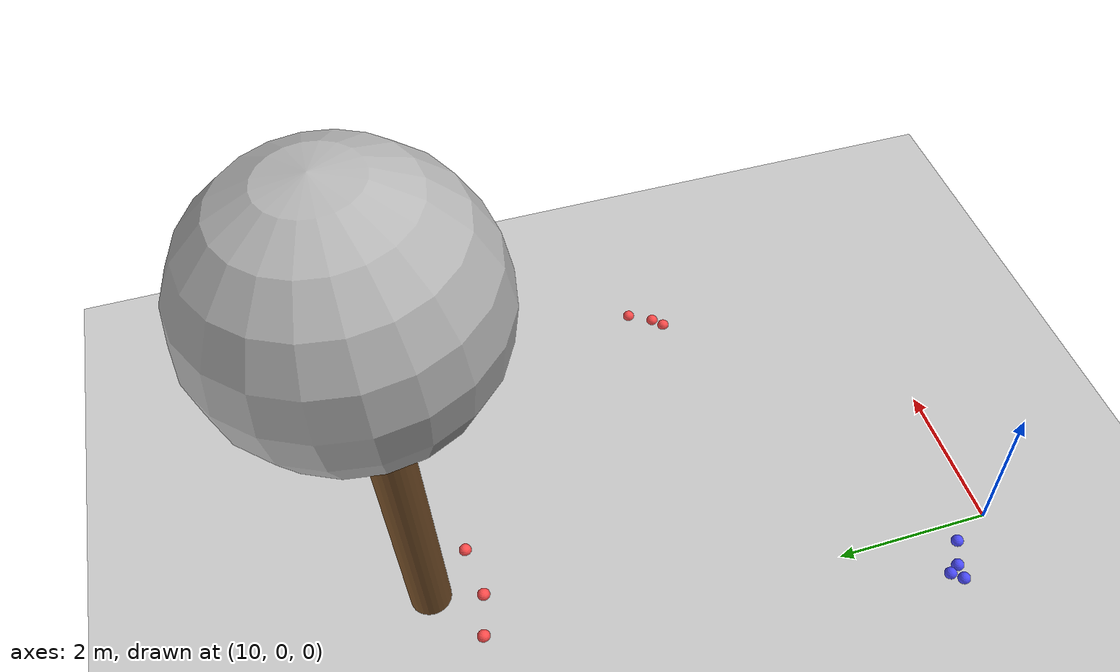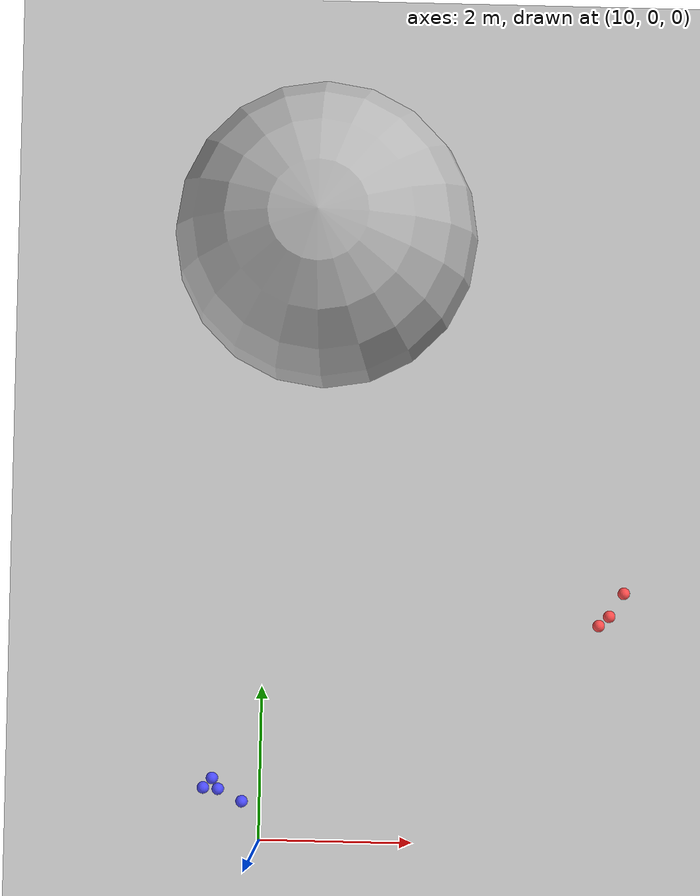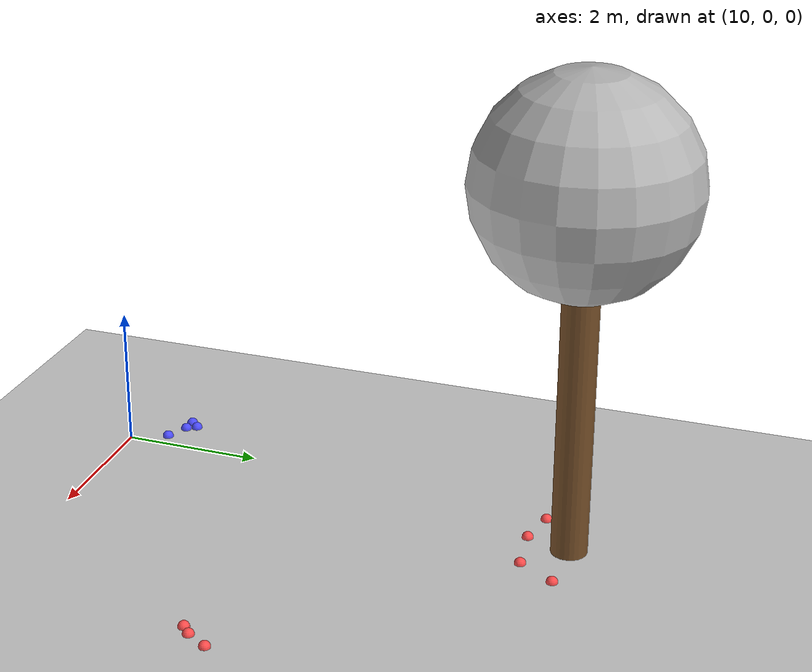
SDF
<sdf version="1.7">
 <world name="default">
  <model name="ground_plane">
   <static>1</static>
   <link name="link">
    <collision name="collision">
     <geometry><plane><normal>0 0 1</normal><size>100 100</size></plane></geometry>
     <surface>
      <contact><collide_bitmask>65535</collide_bitmask></contact>
      <friction><ode><mu>100</mu><mu2>50</mu2></ode></friction>
     </surface>
    </collision>
    <visual name="visual">
     <cast_shadows>0</cast_shadows>
     <geometry><plane><normal>0 0 1</normal><size>100 100</size></plane></geometry>
     <material>
      <script><uri>file://media/materials/scripts/gazebo.material</uri><name>Gazebo/Grey</name></script>
     </material>
    </visual>
   </link>
  </model>
  <model name="tree_simple_77">
   <static>1</static>
   <link name="link">
    <pose>0 0 0.1 0 -0 0</pose>
    <inertial>
     <mass>666</mass>
     <inertia>
      <ixx>0.0861167</ixx>
      <ixy>0</ixy>
      <ixz>0</ixz>
      <iyy>0.0861167</iyy>
      <iyz>0</iyz>
      <izz>0.0861167</izz>
     </inertia>
    </inertial>
    <collision name="collision_trunk">
     <pose>0 0 2 0 -0 0</pose>
     <geometry><cylinder><radius>0.25</radius><length>4</length></cylinder></geometry>
     <surface>
      <contact>
       <poissons_ratio>0.347</poissons_ratio>
       <elastic_modulus>8.8e+09</elastic_modulus>
       <ode><kp>100000</kp><kd>100</kd><max_vel>100</max_vel><min_depth>0.001</min_depth></ode>
      </contact>
      <friction>
       <torsional>
        <coefficient>1</coefficient>
        <use_patch_radius>0</use_patch_radius>
        <surface_radius>0.01</surface_radius>
       </torsional>
      </friction>
     </surface>
    </collision>
    <collision name="collision_treetop">
     <pose>0 0 5.2 0 -0 0</pose>
     <geometry><sphere><radius>1.5</radius></sphere></geometry>
     <surface>
      <contact>
       <poissons_ratio>0.347</poissons_ratio>
       <elastic_modulus>8.8e+09</elastic_modulus>
       <ode><kp>100000</kp><kd>100</kd><max_vel>100</max_vel><min_depth>0.001</min_depth></ode>
      </contact>
      <friction>
       <torsional>
        <coefficient>1</coefficient>
        <use_patch_radius>0</use_patch_radius>
        <surface_radius>0.01</surface_radius>
       </torsional>
      </friction>
     </surface>
    </collision>
    <visual name="trunk">
     <pose>0 0 2 0 -0 0</pose>
     <geometry><cylinder><radius>0.25</radius><length>4</length></cylinder></geometry>
     <material>
      <script>
       <uri>model://tree_simple/scripts</uri>
       <uri>model://tree_simple/materials/textures</uri>
       <name>TreeSimple/Trunk</name>
      </script>
     </material>
    </visual>
    <visual name="treetop">
     <pose>0 0 5.2 0 -0 0</pose>
     <geometry><sphere><radius>1.5</radius></sphere></geometry>
     <material>
      <script>
       <uri>model://tree_simple/scripts</uri>
       <uri>model://tree_simple/materials/textures</uri>
       <name>TreeSimple/Treetop</name>
      </script>
     </material>
    </visual>
   </link>
   <pose>11 7 -0.1 0 -0 0</pose>
  </model>
  <model name="seed_red_308">
   <link name="link">
    <inertial>
     <mass>1</mass>
     <inertia><ixx>0.1</ixx><ixy>0</ixy><ixz>0</ixz><iyy>0.1</iyy><iyz>0</iyz><izz>0.1</izz></inertia>
    </inertial>
    <visual name="visual">
     <geometry><sphere><radius>0.08</radius></sphere></geometry>
     <material>
      <script><name>Gazebo/Grey</name><uri>file://media/materials/scripts/gazebo.material</uri></script>
      <shader type="pixel"><normal_map>__default__</normal_map></shader>
      <ambient>1 0.3 0.3 1</ambient>
      <diffuse>0.7 0.7 0.7 1</diffuse>
      <specular>0.01 0.01 0.01 1</specular>
      <emissive>0 0 0 1</emissive>
     </material>
    </visual>
    <collision name="collision">
     <geometry><sphere><radius>0.0005</radius></sphere></geometry>
     <surface>
      <friction>
       <ode><mu>1</mu><mu2>1</mu2><fdir1>0 0 0</fdir1><slip1>0</slip1><slip2>0</slip2></ode>
       <torsional>
        <coefficient>1</coefficient>
        <patch_radius>0</patch_radius>
        <surface_radius>0</surface_radius>
        <use_patch_radius>1</use_patch_radius>
        <ode><slip>0</slip></ode>
       </torsional>
      </friction>
      <bounce><restitution_coefficient>0</restitution_coefficient><threshold>1e+06</threshold></bounce>
      <contact>
       <collide_without_contact>0</collide_without_contact>
       <collide_without_contact_bitmask>1</collide_without_contact_bitmask>
       <collide_bitmask>1</collide_bitmask>
       <ode>
        <soft_cfm>0</soft_cfm>
        <soft_erp>0.2</soft_erp>
        <kp>1e+13</kp>
        <kd>1</kd>
        <max_vel>0.01</max_vel>
        <min_depth>0</min_depth>
       </ode>
       <bullet>
        <split_impulse>1</split_impulse>
        <split_impulse_penetration_threshold>-0.01</split_impulse_penetration_threshold>
        <soft_cfm>0</soft_cfm>
        <soft_erp>0.2</soft_erp>
        <kp>1e+13</kp>
        <kd>1</kd>
       </bullet>
      </contact>
     </surface>
    </collision>
   </link>
   <static>0</static>
   <pose>10.2884 6.50416 0.0005 0 -0 0</pose>
  </model>
  <model name="seed_red_313">
   <link name="link">
    <inertial>
     <mass>1</mass>
     <inertia><ixx>0.1</ixx><ixy>0</ixy><ixz>0</ixz><iyy>0.1</iyy><iyz>0</iyz><izz>0.1</izz></inertia>
    </inertial>
    <visual name="visual">
     <geometry><sphere><radius>0.08</radius></sphere></geometry>
     <material>
      <script><name>Gazebo/Grey</name><uri>file://media/materials/scripts/gazebo.material</uri></script>
      <shader type="pixel"><normal_map>__default__</normal_map></shader>
      <ambient>1 0.3 0.3 1</ambient>
      <diffuse>0.7 0.7 0.7 1</diffuse>
      <specular>0.01 0.01 0.01 1</specular>
      <emissive>0 0 0 1</emissive>
     </material>
    </visual>
    <collision name="collision">
     <geometry><sphere><radius>0.0005</radius></sphere></geometry>
     <surface>
      <friction>
       <ode><mu>1</mu><mu2>1</mu2><fdir1>0 0 0</fdir1><slip1>0</slip1><slip2>0</slip2></ode>
       <torsional>
        <coefficient>1</coefficient>
        <patch_radius>0</patch_radius>
        <surface_radius>0</surface_radius>
        <use_patch_radius>1</use_patch_radius>
        <ode><slip>0</slip></ode>
       </torsional>
      </friction>
      <bounce><restitution_coefficient>0</restitution_coefficient><threshold>1e+06</threshold></bounce>
      <contact>
       <collide_without_contact>0</collide_without_contact>
       <collide_without_contact_bitmask>1</collide_without_contact_bitmask>
       <collide_bitmask>1</collide_bitmask>
       <ode>
        <soft_cfm>0</soft_cfm>
        <soft_erp>0.2</soft_erp>
        <kp>1e+13</kp>
        <kd>1</kd>
        <max_vel>0.01</max_vel>
        <min_depth>0</min_depth>
       </ode>
       <bullet>
        <split_impulse>1</split_impulse>
        <split_impulse_penetration_threshold>-0.01</split_impulse_penetration_threshold>
        <soft_cfm>0</soft_cfm>
        <soft_erp>0.2</soft_erp>
        <kp>1e+13</kp>
        <kd>1</kd>
       </bullet>
      </contact>
     </surface>
    </collision>
   </link>
   <static>0</static>
   <pose>10.8317 6.38374 0.0005 0 -0 0</pose>
  </model>
  <model name="seed_red_314">
   <link name="link">
    <inertial>
     <mass>1</mass>
     <inertia><ixx>0.1</ixx><ixy>0</ixy><ixz>0</ixz><iyy>0.1</iyy><iyz>0</iyz><izz>0.1</izz></inertia>
    </inertial>
    <visual name="visual">
     <geometry><sphere><radius>0.08</radius></sphere></geometry>
     <material>
      <script><name>Gazebo/Grey</name><uri>file://media/materials/scripts/gazebo.material</uri></script>
      <shader type="pixel"><normal_map>__default__</normal_map></shader>
      <ambient>1 0.3 0.3 1</ambient>
      <diffuse>0.7 0.7 0.7 1</diffuse>
      <specular>0.01 0.01 0.01 1</specular>
      <emissive>0 0 0 1</emissive>
     </material>
    </visual>
    <collision name="collision">
     <geometry><sphere><radius>0.0005</radius></sphere></geometry>
     <surface>
      <friction>
       <ode><mu>1</mu><mu2>1</mu2><fdir1>0 0 0</fdir1><slip1>0</slip1><slip2>0</slip2></ode>
       <torsional>
        <coefficient>1</coefficient>
        <patch_radius>0</patch_radius>
        <surface_radius>0</surface_radius>
        <use_patch_radius>1</use_patch_radius>
        <ode><slip>0</slip></ode>
       </torsional>
      </friction>
      <bounce><restitution_coefficient>0</restitution_coefficient><threshold>1e+06</threshold></bounce>
      <contact>
       <collide_without_contact>0</collide_without_contact>
       <collide_without_contact_bitmask>1</collide_without_contact_bitmask>
       <collide_bitmask>1</collide_bitmask>
       <ode>
        <soft_cfm>0</soft_cfm>
        <soft_erp>0.2</soft_erp>
        <kp>1e+13</kp>
        <kd>1</kd>
        <max_vel>0.01</max_vel>
        <min_depth>0</min_depth>
       </ode>
       <bullet>
        <split_impulse>1</split_impulse>
        <split_impulse_penetration_threshold>-0.01</split_impulse_penetration_threshold>
        <soft_cfm>0</soft_cfm>
        <soft_erp>0.2</soft_erp>
        <kp>1e+13</kp>
        <kd>1</kd>
       </bullet>
      </contact>
     </surface>
    </collision>
   </link>
   <static>0</static>
   <pose>11.5167 6.46631 0.0005 0 -0 0</pose>
  </model>
  <model name="seed_red_316">
   <link name="link">
    <inertial>
     <mass>1</mass>
     <inertia><ixx>0.1</ixx><ixy>0</ixy><ixz>0</ixz><iyy>0.1</iyy><iyz>0</iyz><izz>0.1</izz></inertia>
    </inertial>
    <visual name="visual">
     <geometry><sphere><radius>0.08</radius></sphere></geometry>
     <material>
      <script><name>Gazebo/Grey</name><uri>file://media/materials/scripts/gazebo.material</uri></script>
      <shader type="pixel"><normal_map>__default__</normal_map></shader>
      <ambient>1 0.3 0.3 1</ambient>
      <diffuse>0.7 0.7 0.7 1</diffuse>
      <specular>0.01 0.01 0.01 1</specular>
      <emissive>0 0 0 1</emissive>
     </material>
    </visual>
    <collision name="collision">
     <geometry><sphere><radius>0.0005</radius></sphere></geometry>
     <surface>
      <friction>
       <ode><mu>1</mu><mu2>1</mu2><fdir1>0 0 0</fdir1><slip1>0</slip1><slip2>0</slip2></ode>
       <torsional>
        <coefficient>1</coefficient>
        <patch_radius>0</patch_radius>
        <surface_radius>0</surface_radius>
        <use_patch_radius>1</use_patch_radius>
        <ode><slip>0</slip></ode>
       </torsional>
      </friction>
      <bounce><restitution_coefficient>0</restitution_coefficient><threshold>1e+06</threshold></bounce>
      <contact>
       <collide_without_contact>0</collide_without_contact>
       <collide_without_contact_bitmask>1</collide_without_contact_bitmask>
       <collide_bitmask>1</collide_bitmask>
       <ode>
        <soft_cfm>0</soft_cfm>
        <soft_erp>0.2</soft_erp>
        <kp>1e+13</kp>
        <kd>1</kd>
        <max_vel>0.01</max_vel>
        <min_depth>0</min_depth>
       </ode>
       <bullet>
        <split_impulse>1</split_impulse>
        <split_impulse_penetration_threshold>-0.01</split_impulse_penetration_threshold>
        <soft_cfm>0</soft_cfm>
        <soft_erp>0.2</soft_erp>
        <kp>1e+13</kp>
        <kd>1</kd>
       </bullet>
      </contact>
     </surface>
    </collision>
   </link>
   <static>0</static>
   <pose>11.8294 6.98326 0.0005 0 -0 0</pose>
  </model>
  <model name="seed_red_369">
   <link name="link">
    <inertial>
     <mass>1</mass>
     <inertia><ixx>0.1</ixx><ixy>0</ixy><ixz>0</ixz><iyy>0.1</iyy><iyz>0</iyz><izz>0.1</izz></inertia>
    </inertial>
    <visual name="visual">
     <geometry><sphere><radius>0.08</radius></sphere></geometry>
     <material>
      <script><name>Gazebo/Grey</name><uri>file://media/materials/scripts/gazebo.material</uri></script>
      <shader type="pixel"><normal_map>__default__</normal_map></shader>
      <ambient>1 0.3 0.3 1</ambient>
      <diffuse>0.7 0.7 0.7 1</diffuse>
      <specular>0.01 0.01 0.01 1</specular>
      <emissive>0 0 0 1</emissive>
     </material>
    </visual>
    <collision name="collision">
     <geometry><sphere><radius>0.0005</radius></sphere></geometry>
     <surface>
      <friction>
       <ode><mu>1</mu><mu2>1</mu2><fdir1>0 0 0</fdir1><slip1>0</slip1><slip2>0</slip2></ode>
       <torsional>
        <coefficient>1</coefficient>
        <patch_radius>0</patch_radius>
        <surface_radius>0</surface_radius>
        <use_patch_radius>1</use_patch_radius>
        <ode><slip>0</slip></ode>
       </torsional>
      </friction>
      <bounce><restitution_coefficient>0</restitution_coefficient><threshold>1e+06</threshold></bounce>
      <contact>
       <collide_without_contact>0</collide_without_contact>
       <collide_without_contact_bitmask>1</collide_without_contact_bitmask>
       <collide_bitmask>1</collide_bitmask>
       <ode>
        <soft_cfm>0</soft_cfm>
        <soft_erp>0.2</soft_erp>
        <kp>1e+13</kp>
        <kd>1</kd>
        <max_vel>0.01</max_vel>
        <min_depth>0</min_depth>
       </ode>
       <bullet>
        <split_impulse>1</split_impulse>
        <split_impulse_penetration_threshold>-0.01</split_impulse_penetration_threshold>
        <soft_cfm>0</soft_cfm>
        <soft_erp>0.2</soft_erp>
        <kp>1e+13</kp>
        <kd>1</kd>
       </bullet>
      </contact>
     </surface>
    </collision>
   </link>
   <static>0</static>
   <pose>14.5156 3.02152 0.0005 0 -0 0</pose>
  </model>
  <model name="seed_red_370">
   <link name="link">
    <inertial>
     <mass>1</mass>
     <inertia><ixx>0.1</ixx><ixy>0</ixy><ixz>0</ixz><iyy>0.1</iyy><iyz>0</iyz><izz>0.1</izz></inertia>
    </inertial>
    <visual name="visual">
     <geometry><sphere><radius>0.08</radius></sphere></geometry>
     <material>
      <script><name>Gazebo/Grey</name><uri>file://media/materials/scripts/gazebo.material</uri></script>
      <shader type="pixel"><normal_map>__default__</normal_map></shader>
      <ambient>1 0.3 0.3 1</ambient>
      <diffuse>0.7 0.7 0.7 1</diffuse>
      <specular>0.01 0.01 0.01 1</specular>
      <emissive>0 0 0 1</emissive>
     </material>
    </visual>
    <collision name="collision">
     <geometry><sphere><radius>0.0005</radius></sphere></geometry>
     <surface>
      <friction>
       <ode><mu>1</mu><mu2>1</mu2><fdir1>0 0 0</fdir1><slip1>0</slip1><slip2>0</slip2></ode>
       <torsional>
        <coefficient>1</coefficient>
        <patch_radius>0</patch_radius>
        <surface_radius>0</surface_radius>
        <use_patch_radius>1</use_patch_radius>
        <ode><slip>0</slip></ode>
       </torsional>
      </friction>
      <bounce><restitution_coefficient>0</restitution_coefficient><threshold>1e+06</threshold></bounce>
      <contact>
       <collide_without_contact>0</collide_without_contact>
       <collide_without_contact_bitmask>1</collide_without_contact_bitmask>
       <collide_bitmask>1</collide_bitmask>
       <ode>
        <soft_cfm>0</soft_cfm>
        <soft_erp>0.2</soft_erp>
        <kp>1e+13</kp>
        <kd>1</kd>
        <max_vel>0.01</max_vel>
        <min_depth>0</min_depth>
       </ode>
       <bullet>
        <split_impulse>1</split_impulse>
        <split_impulse_penetration_threshold>-0.01</split_impulse_penetration_threshold>
        <soft_cfm>0</soft_cfm>
        <soft_erp>0.2</soft_erp>
        <kp>1e+13</kp>
        <kd>1</kd>
       </bullet>
      </contact>
     </surface>
    </collision>
   </link>
   <static>0</static>
   <pose>14.7002 3.32565 0.0005 0 -0 0</pose>
  </model>
  <model name="seed_red_371">
   <link name="link">
    <inertial>
     <mass>1</mass>
     <inertia><ixx>0.1</ixx><ixy>0</ixy><ixz>0</ixz><iyy>0.1</iyy><iyz>0</iyz><izz>0.1</izz></inertia>
    </inertial>
    <visual name="visual">
     <geometry><sphere><radius>0.08</radius></sphere></geometry>
     <material>
      <script><name>Gazebo/Grey</name><uri>file://media/materials/scripts/gazebo.material</uri></script>
      <shader type="pixel"><normal_map>__default__</normal_map></shader>
      <ambient>1 0.3 0.3 1</ambient>
      <diffuse>0.7 0.7 0.7 1</diffuse>
      <specular>0.01 0.01 0.01 1</specular>
      <emissive>0 0 0 1</emissive>
     </material>
    </visual>
    <collision name="collision">
     <geometry><sphere><radius>0.0005</radius></sphere></geometry>
     <surface>
      <friction>
       <ode><mu>1</mu><mu2>1</mu2><fdir1>0 0 0</fdir1><slip1>0</slip1><slip2>0</slip2></ode>
       <torsional>
        <coefficient>1</coefficient>
        <patch_radius>0</patch_radius>
        <surface_radius>0</surface_radius>
        <use_patch_radius>1</use_patch_radius>
        <ode><slip>0</slip></ode>
       </torsional>
      </friction>
      <bounce><restitution_coefficient>0</restitution_coefficient><threshold>1e+06</threshold></bounce>
      <contact>
       <collide_without_contact>0</collide_without_contact>
       <collide_without_contact_bitmask>1</collide_without_contact_bitmask>
       <collide_bitmask>1</collide_bitmask>
       <ode>
        <soft_cfm>0</soft_cfm>
        <soft_erp>0.2</soft_erp>
        <kp>1e+13</kp>
        <kd>1</kd>
        <max_vel>0.01</max_vel>
        <min_depth>0</min_depth>
       </ode>
       <bullet>
        <split_impulse>1</split_impulse>
        <split_impulse_penetration_threshold>-0.01</split_impulse_penetration_threshold>
        <soft_cfm>0</soft_cfm>
        <soft_erp>0.2</soft_erp>
        <kp>1e+13</kp>
        <kd>1</kd>
       </bullet>
      </contact>
     </surface>
    </collision>
   </link>
   <static>0</static>
   <pose>14.3807 2.89718 0.0005 0 -0 0</pose>
  </model>
  <model name="seed_blue_209">
   <link name="link">
    <inertial>
     <mass>1</mass>
     <inertia><ixx>0.1</ixx><ixy>0</ixy><ixz>0</ixz><iyy>0.1</iyy><iyz>0</iyz><izz>0.1</izz></inertia>
    </inertial>
    <visual name="visual">
     <geometry><sphere><radius>0.08</radius></sphere></geometry>
     <material>
      <script><name>Gazebo/Grey</name><uri>file://media/materials/scripts/gazebo.material</uri></script>
      <shader type="pixel"><normal_map>__default__</normal_map></shader>
      <ambient>0.3 0.3 1 1</ambient>
      <diffuse>0.7 0.7 0.7 1</diffuse>
      <specular>0.01 0.01 0.01 1</specular>
      <emissive>0 0 0 1</emissive>
     </material>
    </visual>
    <collision name="collision">
     <geometry><sphere><radius>0.0005</radius></sphere></geometry>
     <surface>
      <friction>
       <ode><mu>1</mu><mu2>1</mu2><fdir1>0 0 0</fdir1><slip1>0</slip1><slip2>0</slip2></ode>
       <torsional>
        <coefficient>1</coefficient>
        <patch_radius>0</patch_radius>
        <surface_radius>0</surface_radius>
        <use_patch_radius>1</use_patch_radius>
        <ode><slip>0</slip></ode>
       </torsional>
      </friction>
      <bounce><restitution_coefficient>0</restitution_coefficient><threshold>1e+06</threshold></bounce>
      <contact>
       <collide_without_contact>0</collide_without_contact>
       <collide_without_contact_bitmask>1</collide_without_contact_bitmask>
       <collide_bitmask>1</collide_bitmask>
       <ode>
        <soft_cfm>0</soft_cfm>
        <soft_erp>0.2</soft_erp>
        <kp>1e+13</kp>
        <kd>1</kd>
        <max_vel>0.01</max_vel>
        <min_depth>0</min_depth>
       </ode>
       <bullet>
        <split_impulse>1</split_impulse>
        <split_impulse_penetration_threshold>-0.01</split_impulse_penetration_threshold>
        <soft_cfm>0</soft_cfm>
        <soft_erp>0.2</soft_erp>
        <kp>1e+13</kp>
        <kd>1</kd>
       </bullet>
      </contact>
     </surface>
    </collision>
   </link>
   <static>0</static>
   <pose>9.37113 0.792072 0.0005 0 -0 0</pose>
  </model>
  <model name="seed_blue_210">
   <link name="link">
    <inertial>
     <mass>1</mass>
     <inertia><ixx>0.1</ixx><ixy>0</ixy><ixz>0</ixz><iyy>0.1</iyy><iyz>0</iyz><izz>0.1</izz></inertia>
    </inertial>
    <visual name="visual">
     <geometry><sphere><radius>0.08</radius></sphere></geometry>
     <material>
      <script><name>Gazebo/Grey</name><uri>file://media/materials/scripts/gazebo.material</uri></script>
      <shader type="pixel"><normal_map>__default__</normal_map></shader>
      <ambient>0.3 0.3 1 1</ambient>
      <diffuse>0.7 0.7 0.7 1</diffuse>
      <specular>0.01 0.01 0.01 1</specular>
      <emissive>0 0 0 1</emissive>
     </material>
    </visual>
    <collision name="collision">
     <geometry><sphere><radius>0.0005</radius></sphere></geometry>
     <surface>
      <friction>
       <ode><mu>1</mu><mu2>1</mu2><fdir1>0 0 0</fdir1><slip1>0</slip1><slip2>0</slip2></ode>
       <torsional>
        <coefficient>1</coefficient>
        <patch_radius>0</patch_radius>
        <surface_radius>0</surface_radius>
        <use_patch_radius>1</use_patch_radius>
        <ode><slip>0</slip></ode>
       </torsional>
      </friction>
      <bounce><restitution_coefficient>0</restitution_coefficient><threshold>1e+06</threshold></bounce>
      <contact>
       <collide_without_contact>0</collide_without_contact>
       <collide_without_contact_bitmask>1</collide_without_contact_bitmask>
       <collide_bitmask>1</collide_bitmask>
       <ode>
        <soft_cfm>0</soft_cfm>
        <soft_erp>0.2</soft_erp>
        <kp>1e+13</kp>
        <kd>1</kd>
        <max_vel>0.01</max_vel>
        <min_depth>0</min_depth>
       </ode>
       <bullet>
        <split_impulse>1</split_impulse>
        <split_impulse_penetration_threshold>-0.01</split_impulse_penetration_threshold>
        <soft_cfm>0</soft_cfm>
        <soft_erp>0.2</soft_erp>
        <kp>1e+13</kp>
        <kd>1</kd>
       </bullet>
      </contact>
     </surface>
    </collision>
   </link>
   <static>0</static>
   <pose>9.76548 0.496431 0.0005 0 -0 0</pose>
  </model>
  <model name="seed_blue_211">
   <link name="link">
    <inertial>
     <mass>1</mass>
     <inertia><ixx>0.1</ixx><ixy>0</ixy><ixz>0</ixz><iyy>0.1</iyy><iyz>0</iyz><izz>0.1</izz></inertia>
    </inertial>
    <visual name="visual">
     <geometry><sphere><radius>0.08</radius></sphere></geometry>
     <material>
      <script><name>Gazebo/Grey</name><uri>file://media/materials/scripts/gazebo.material</uri></script>
      <shader type="pixel"><normal_map>__default__</normal_map></shader>
      <ambient>0.3 0.3 1 1</ambient>
      <diffuse>0.7 0.7 0.7 1</diffuse>
      <specular>0.01 0.01 0.01 1</specular>
      <emissive>0 0 0 1</emissive>
     </material>
    </visual>
    <collision name="collision">
     <geometry><sphere><radius>0.0005</radius></sphere></geometry>
     <surface>
      <friction>
       <ode><mu>1</mu><mu2>1</mu2><fdir1>0 0 0</fdir1><slip1>0</slip1><slip2>0</slip2></ode>
       <torsional>
        <coefficient>1</coefficient>
        <patch_radius>0</patch_radius>
        <surface_radius>0</surface_radius>
        <use_patch_radius>1</use_patch_radius>
        <ode><slip>0</slip></ode>
       </torsional>
      </friction>
      <bounce><restitution_coefficient>0</restitution_coefficient><threshold>1e+06</threshold></bounce>
      <contact>
       <collide_without_contact>0</collide_without_contact>
       <collide_without_contact_bitmask>1</collide_without_contact_bitmask>
       <collide_bitmask>1</collide_bitmask>
       <ode>
        <soft_cfm>0</soft_cfm>
        <soft_erp>0.2</soft_erp>
        <kp>1e+13</kp>
        <kd>1</kd>
        <max_vel>0.01</max_vel>
        <min_depth>0</min_depth>
       </ode>
       <bullet>
        <split_impulse>1</split_impulse>
        <split_impulse_penetration_threshold>-0.01</split_impulse_penetration_threshold>
        <soft_cfm>0</soft_cfm>
        <soft_erp>0.2</soft_erp>
        <kp>1e+13</kp>
        <kd>1</kd>
       </bullet>
      </contact>
     </surface>
    </collision>
   </link>
   <static>0</static>
   <pose>9.45121 0.65254 0.0005 0 -0 0</pose>
  </model>
  <model name="seed_blue_213">
   <link name="link">
    <inertial>
     <mass>1</mass>
     <inertia><ixx>0.1</ixx><ixy>0</ixy><ixz>0</ixz><iyy>0.1</iyy><iyz>0</iyz><izz>0.1</izz></inertia>
    </inertial>
    <visual name="visual">
     <geometry><sphere><radius>0.08</radius></sphere></geometry>
     <material>
      <script><name>Gazebo/Grey</name><uri>file://media/materials/scripts/gazebo.material</uri></script>
      <shader type="pixel"><normal_map>__default__</normal_map></shader>
      <ambient>0.3 0.3 1 1</ambient>
      <diffuse>0.7 0.7 0.7 1</diffuse>
      <specular>0.01 0.01 0.01 1</specular>
      <emissive>0 0 0 1</emissive>
     </material>
    </visual>
    <collision name="collision">
     <geometry><sphere><radius>0.0005</radius></sphere></geometry>
     <surface>
      <friction>
       <ode><mu>1</mu><mu2>1</mu2><fdir1>0 0 0</fdir1><slip1>0</slip1><slip2>0</slip2></ode>
       <torsional>
        <coefficient>1</coefficient>
        <patch_radius>0</patch_radius>
        <surface_radius>0</surface_radius>
        <use_patch_radius>1</use_patch_radius>
        <ode><slip>0</slip></ode>
       </torsional>
      </friction>
      <bounce><restitution_coefficient>0</restitution_coefficient><threshold>1e+06</threshold></bounce>
      <contact>
       <collide_without_contact>0</collide_without_contact>
       <collide_without_contact_bitmask>1</collide_without_contact_bitmask>
       <collide_bitmask>1</collide_bitmask>
       <ode>
        <soft_cfm>0</soft_cfm>
        <soft_erp>0.2</soft_erp>
        <kp>1e+13</kp>
        <kd>1</kd>
        <max_vel>0.01</max_vel>
        <min_depth>0</min_depth>
       </ode>
       <bullet>
        <split_impulse>1</split_impulse>
        <split_impulse_penetration_threshold>-0.01</split_impulse_penetration_threshold>
        <soft_cfm>0</soft_cfm>
        <soft_erp>0.2</soft_erp>
        <kp>1e+13</kp>
        <kd>1</kd>
       </bullet>
      </contact>
     </surface>
    </collision>
   </link>
   <static>0</static>
   <pose>9.25764 0.664657 0.0005 0 -0 0</pose>
  </model>
 </world>
</sdf>
